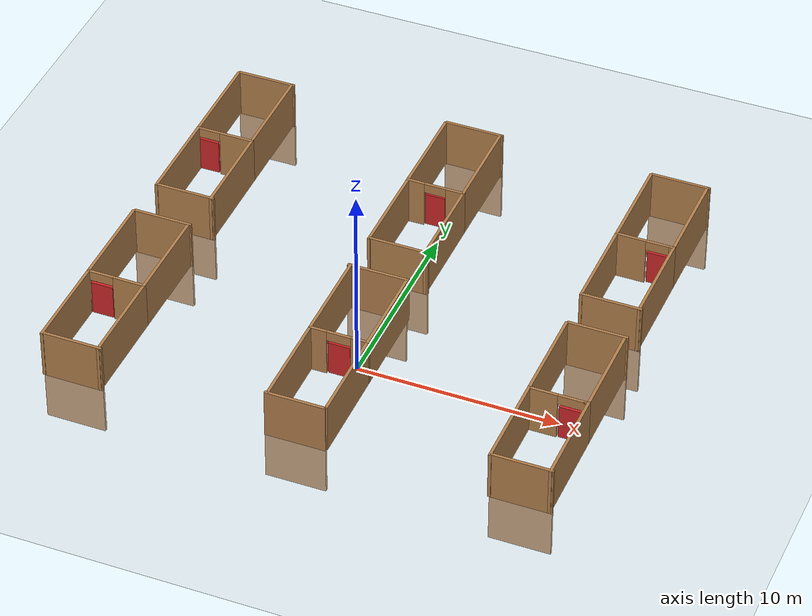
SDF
<sdf version="1.6">
 <world name="default">
  <model name="ground_plane">
   <static>1</static>
   <link name="link">
    <collision name="collision">
     <geometry><plane><normal>0 0 1</normal><size>100 100</size></plane></geometry>
     <surface><friction><ode><mu>100</mu><mu2>50</mu2></ode></friction></surface>
    </collision>
    <visual name="visual">
     <cast_shadows>0</cast_shadows>
     <geometry><plane><normal>0 0 1</normal><size>100 100</size></plane></geometry>
     <material>
      <script><uri>file://media/materials/scripts/gazebo.material</uri><name>Gazebo/Grey</name></script>
     </material>
    </visual>
   </link>
  </model>
  <model name="door_1">
   <link name="hinge">
    <inertial>
     <pose>-0.05 0 0 0 -0 0</pose>
     <mass>0.01</mass>
     <inertia><ixx>1</ixx><ixy>0</ixy><ixz>0</ixz><iyy>100</iyy><iyz>0</iyz><izz>1</izz></inertia>
    </inertial>
    <velocity_decay><linear>0</linear><angular>0</angular></velocity_decay>
   </link>
   <link name="door">
    <pose>0.1 -0.65 0.35 0 0 -1.57</pose>
    <inertial>
     <pose>0.1 -0.65 0.35 0 0 -1.57</pose>
     <mass>0.1</mass>
     <inertia><ixx>1</ixx><ixy>0</ixy><ixz>0</ixz><iyy>100</iyy><iyz>0</iyz><izz>1</izz></inertia>
    </inertial>
    <collision name="door_collision">
     <pose>0.1 -0.65 0.35 0 0 -1.57</pose>
     <geometry><box><size>1.1 0.15 1.8</size></box></geometry>
    </collision>
    <visual name="door_visual">
     <pose>0.1 -0.65 0.35 0 0 -1.57</pose>
     <geometry><box><size>1.1 0.15 1.8</size></box></geometry>
     <material><script><name>Gazebo/Red</name><uri>__default__</uri></script></material>
    </visual>
    <velocity_decay><linear>0</linear><angular>0</angular></velocity_decay>
   </link>
   <joint name="door_hinge" type="revolute">
    <child>door</child>
    <parent>hinge</parent>
    <pose>0.08 0 0 0 -0 0</pose>
    <axis>
     <xyz>0 0 1</xyz>
     <limit><lower>-1.57</lower><upper>1.57</upper><effort>0</effort><velocity>10</velocity></limit>
     <dynamics><spring_reference>0</spring_reference><spring_stiffness>0</spring_stiffness></dynamics>
     <use_parent_model_frame>0</use_parent_model_frame>
    </axis>
   </joint>
   <joint name="floor_link" type="revolute">
    <child>hinge</child>
    <parent>world</parent>
    <axis>
     <xyz>0 0 1</xyz>
     <limit><lower>0</lower><upper>0</upper><effort>0</effort><velocity>0</velocity></limit>
     <dynamics><spring_reference>0</spring_reference><spring_stiffness>0</spring_stiffness></dynamics>
     <use_parent_model_frame>0</use_parent_model_frame>
    </axis>
   </joint>
   <plugin name="door_plugin" filename="libdoor_plugin.so">
    <door_type>flip</door_type>
    <model_domain_space>door_</model_domain_space>
    <door_direction>clockwise</door_direction>
    <robotNamespace>/</robotNamespace>
   </plugin>
   <pose>-0 0 0.3 0 -0 0</pose>
  </model>
  <model name="door_2">
   <link name="hinge">
    <inertial>
     <pose>-0.05 0 0 0 -0 0</pose>
     <mass>0.01</mass>
     <inertia><ixx>1</ixx><ixy>0</ixy><ixz>0</ixz><iyy>100</iyy><iyz>0</iyz><izz>1</izz></inertia>
    </inertial>
    <velocity_decay><linear>0</linear><angular>0</angular></velocity_decay>
   </link>
   <link name="door">
    <pose>0.1 -0.6 0.35 0 0 -1.57</pose>
    <inertial>
     <pose>0.1 -0.6 0.35 0 0 -1.57</pose>
     <mass>0.1</mass>
     <inertia><ixx>1</ixx><ixy>0</ixy><ixz>0</ixz><iyy>100</iyy><iyz>0</iyz><izz>1</izz></inertia>
    </inertial>
    <collision name="door_collision">
     <pose>0.1 -0.6 0.35 0 0 -1.57</pose>
     <geometry><box><size>1 0.15 1.8</size></box></geometry>
    </collision>
    <visual name="door_visual">
     <pose>0.1 -0.6 0.35 0 0 -1.57</pose>
     <geometry><box><size>1 0.15 1.8</size></box></geometry>
     <material><script><name>Gazebo/Red</name><uri>__default__</uri></script></material>
    </visual>
    <velocity_decay><linear>0</linear><angular>0</angular></velocity_decay>
   </link>
   <joint name="door_hinge" type="revolute">
    <child>door</child>
    <parent>hinge</parent>
    <pose>0.08 0 0 0 -0 0</pose>
    <axis>
     <xyz>0 0 1</xyz>
     <limit><lower>-1.57</lower><upper>1.57</upper><effort>0</effort><velocity>10</velocity></limit>
     <dynamics><spring_reference>0</spring_reference><spring_stiffness>0</spring_stiffness></dynamics>
     <use_parent_model_frame>0</use_parent_model_frame>
    </axis>
   </joint>
   <joint name="floor_link" type="revolute">
    <child>hinge</child>
    <parent>world</parent>
    <axis>
     <xyz>0 0 1</xyz>
     <limit><lower>0</lower><upper>0</upper><effort>0</effort><velocity>0</velocity></limit>
     <dynamics><spring_reference>0</spring_reference><spring_stiffness>0</spring_stiffness></dynamics>
     <use_parent_model_frame>0</use_parent_model_frame>
    </axis>
   </joint>
   <plugin name="door_plugin" filename="libdoor_plugin.so">
    <door_type>flip</door_type>
    <model_domain_space>door_</model_domain_space>
    <door_direction>clockwise</door_direction>
    <robotNamespace>/</robotNamespace>
   </plugin>
   <pose>-0.060638 11.8346 0.3 0 -0 0</pose>
  </model>
  <model name="door_7">
   <link name="hinge">
    <inertial>
     <pose>-0.05 0 0 0 -0 0</pose>
     <mass>0.01</mass>
     <inertia><ixx>1</ixx><ixy>0</ixy><ixz>0</ixz><iyy>100</iyy><iyz>0</iyz><izz>1</izz></inertia>
    </inertial>
    <velocity_decay><linear>0</linear><angular>0</angular></velocity_decay>
   </link>
   <link name="door">
    <pose>0.1 -0.65 0.35 0 0 -1.57</pose>
    <inertial>
     <pose>0.1 -0.65 0.35 0 0 -1.57</pose>
     <mass>0.1</mass>
     <inertia><ixx>1</ixx><ixy>0</ixy><ixz>0</ixz><iyy>100</iyy><iyz>0</iyz><izz>1</izz></inertia>
    </inertial>
    <collision name="door_collision">
     <pose>0.1 -0.65 0.35 0 0 -1.57</pose>
     <geometry><box><size>1.1 0.15 1.8</size></box></geometry>
    </collision>
    <visual name="door_visual">
     <pose>0.1 -0.65 0.35 0 0 -1.57</pose>
     <geometry><box><size>1.1 0.15 1.8</size></box></geometry>
     <material><script><name>Gazebo/Red</name><uri>__default__</uri></script></material>
    </visual>
    <velocity_decay><linear>0</linear><angular>0</angular></velocity_decay>
   </link>
   <joint name="door_hinge" type="revolute">
    <child>door</child>
    <parent>hinge</parent>
    <pose>0.08 0 0 0 -0 0</pose>
    <axis>
     <xyz>0 0 1</xyz>
     <limit><lower>-1.57</lower><upper>1.57</upper><effort>0</effort><velocity>10</velocity></limit>
     <dynamics><spring_reference>0</spring_reference><spring_stiffness>0</spring_stiffness></dynamics>
     <use_parent_model_frame>0</use_parent_model_frame>
    </axis>
   </joint>
   <joint name="floor_link" type="revolute">
    <child>hinge</child>
    <parent>world</parent>
    <axis>
     <xyz>0 0 1</xyz>
     <limit><lower>0</lower><upper>0</upper><effort>0</effort><velocity>0</velocity></limit>
     <dynamics><spring_reference>0</spring_reference><spring_stiffness>0</spring_stiffness></dynamics>
     <use_parent_model_frame>0</use_parent_model_frame>
    </axis>
   </joint>
   <plugin name="door_plugin" filename="libdoor_plugin.so">
    <door_type>flip</door_type>
    <model_domain_space>door_</model_domain_space>
    <door_direction>clockwise</door_direction>
    <robotNamespace>/</robotNamespace>
   </plugin>
   <pose>11.3504 -0.115257 0.3 0 -0 0</pose>
  </model>
  <model name="door_10">
   <link name="hinge">
    <inertial>
     <pose>-0.05 0 0 0 -0 0</pose>
     <mass>0.01</mass>
     <inertia><ixx>1</ixx><ixy>0</ixy><ixz>0</ixz><iyy>100</iyy><iyz>0</iyz><izz>1</izz></inertia>
    </inertial>
    <velocity_decay><linear>0</linear><angular>0</angular></velocity_decay>
   </link>
   <link name="door">
    <pose>0.1 -0.6 0.35 0 0 -1.57</pose>
    <inertial>
     <pose>0.1 -0.6 0.35 0 0 -1.57</pose>
     <mass>0.1</mass>
     <inertia><ixx>1</ixx><ixy>0</ixy><ixz>0</ixz><iyy>100</iyy><iyz>0</iyz><izz>1</izz></inertia>
    </inertial>
    <collision name="door_collision">
     <pose>0.1 -0.6 0.35 0 0 -1.57</pose>
     <geometry><box><size>1 0.15 1.8</size></box></geometry>
    </collision>
    <visual name="door_visual">
     <pose>0.1 -0.6 0.35 0 0 -1.57</pose>
     <geometry><box><size>1 0.15 1.8</size></box></geometry>
     <material><script><name>Gazebo/Red</name><uri>__default__</uri></script></material>
    </visual>
    <velocity_decay><linear>0</linear><angular>0</angular></velocity_decay>
   </link>
   <joint name="door_hinge" type="revolute">
    <child>door</child>
    <parent>hinge</parent>
    <pose>0.08 0 0 0 -0 0</pose>
    <axis>
     <xyz>0 0 1</xyz>
     <limit><lower>-1.57</lower><upper>1.57</upper><effort>0</effort><velocity>10</velocity></limit>
     <dynamics><spring_reference>0</spring_reference><spring_stiffness>0</spring_stiffness></dynamics>
     <use_parent_model_frame>0</use_parent_model_frame>
    </axis>
   </joint>
   <joint name="floor_link" type="revolute">
    <child>hinge</child>
    <parent>world</parent>
    <axis>
     <xyz>0 0 1</xyz>
     <limit><lower>0</lower><upper>0</upper><effort>0</effort><velocity>0</velocity></limit>
     <dynamics><spring_reference>0</spring_reference><spring_stiffness>0</spring_stiffness></dynamics>
     <use_parent_model_frame>0</use_parent_model_frame>
    </axis>
   </joint>
   <plugin name="door_plugin" filename="libdoor_plugin.so">
    <door_type>flip</door_type>
    <model_domain_space>door_</model_domain_space>
    <door_direction>clockwise</door_direction>
    <robotNamespace>/</robotNamespace>
   </plugin>
   <pose>11.2661 11.7432 0.3 0 -0 0</pose>
  </model>
  <model name="door_15">
   <link name="hinge">
    <inertial>
     <pose>-0.05 0 0 0 -0 0</pose>
     <mass>0.01</mass>
     <inertia><ixx>1</ixx><ixy>0</ixy><ixz>0</ixz><iyy>100</iyy><iyz>0</iyz><izz>1</izz></inertia>
    </inertial>
    <velocity_decay><linear>0</linear><angular>0</angular></velocity_decay>
   </link>
   <link name="door">
    <pose>0.1 -0.65 0.35 0 0 -1.57</pose>
    <inertial>
     <pose>0.1 -0.65 0.35 0 0 -1.57</pose>
     <mass>0.1</mass>
     <inertia><ixx>1</ixx><ixy>0</ixy><ixz>0</ixz><iyy>100</iyy><iyz>0</iyz><izz>1</izz></inertia>
    </inertial>
    <collision name="door_collision">
     <pose>0.1 -0.65 0.35 0 0 -1.57</pose>
     <geometry><box><size>1.1 0.15 1.8</size></box></geometry>
    </collision>
    <visual name="door_visual">
     <pose>0.1 -0.65 0.35 0 0 -1.57</pose>
     <geometry><box><size>1.1 0.15 1.8</size></box></geometry>
     <material><script><name>Gazebo/Red</name><uri>__default__</uri></script></material>
    </visual>
    <velocity_decay><linear>0</linear><angular>0</angular></velocity_decay>
   </link>
   <joint name="door_hinge" type="revolute">
    <child>door</child>
    <parent>hinge</parent>
    <pose>0.08 0 0 0 -0 0</pose>
    <axis>
     <xyz>0 0 1</xyz>
     <limit><lower>-1.57</lower><upper>1.57</upper><effort>0</effort><velocity>10</velocity></limit>
     <dynamics><spring_reference>0</spring_reference><spring_stiffness>0</spring_stiffness></dynamics>
     <use_parent_model_frame>0</use_parent_model_frame>
    </axis>
   </joint>
   <joint name="floor_link" type="revolute">
    <child>hinge</child>
    <parent>world</parent>
    <axis>
     <xyz>0 0 1</xyz>
     <limit><lower>0</lower><upper>0</upper><effort>0</effort><velocity>0</velocity></limit>
     <dynamics><spring_reference>0</spring_reference><spring_stiffness>0</spring_stiffness></dynamics>
     <use_parent_model_frame>0</use_parent_model_frame>
    </axis>
   </joint>
   <plugin name="door_plugin" filename="libdoor_plugin.so">
    <door_type>flip</door_type>
    <model_domain_space>door_</model_domain_space>
    <door_direction>clockwise</door_direction>
    <robotNamespace>/</robotNamespace>
   </plugin>
   <pose>-11.9366 -0.249454 0.3 0 -0 0</pose>
  </model>
  <model name="door_16">
   <link name="hinge">
    <inertial>
     <pose>-0.05 0 0 0 -0 0</pose>
     <mass>0.01</mass>
     <inertia><ixx>1</ixx><ixy>0</ixy><ixz>0</ixz><iyy>100</iyy><iyz>0</iyz><izz>1</izz></inertia>
    </inertial>
    <velocity_decay><linear>0</linear><angular>0</angular></velocity_decay>
   </link>
   <link name="door">
    <pose>0.1 -0.6 0.35 0 0 -1.57</pose>
    <inertial>
     <pose>0.1 -0.6 0.35 0 0 -1.57</pose>
     <mass>0.1</mass>
     <inertia><ixx>1</ixx><ixy>0</ixy><ixz>0</ixz><iyy>100</iyy><iyz>0</iyz><izz>1</izz></inertia>
    </inertial>
    <collision name="door_collision">
     <pose>0.1 -0.6 0.35 0 0 -1.57</pose>
     <geometry><box><size>1 0.15 1.8</size></box></geometry>
    </collision>
    <visual name="door_visual">
     <pose>0.1 -0.6 0.35 0 0 -1.57</pose>
     <geometry><box><size>1 0.15 1.8</size></box></geometry>
     <material><script><name>Gazebo/Red</name><uri>__default__</uri></script></material>
    </visual>
    <velocity_decay><linear>0</linear><angular>0</angular></velocity_decay>
   </link>
   <joint name="door_hinge" type="revolute">
    <child>door</child>
    <parent>hinge</parent>
    <pose>0.08 0 0 0 -0 0</pose>
    <axis>
     <xyz>0 0 1</xyz>
     <limit><lower>-1.57</lower><upper>1.57</upper><effort>0</effort><velocity>10</velocity></limit>
     <dynamics><spring_reference>0</spring_reference><spring_stiffness>0</spring_stiffness></dynamics>
     <use_parent_model_frame>0</use_parent_model_frame>
    </axis>
   </joint>
   <joint name="floor_link" type="revolute">
    <child>hinge</child>
    <parent>world</parent>
    <axis>
     <xyz>0 0 1</xyz>
     <limit><lower>0</lower><upper>0</upper><effort>0</effort><velocity>0</velocity></limit>
     <dynamics><spring_reference>0</spring_reference><spring_stiffness>0</spring_stiffness></dynamics>
     <use_parent_model_frame>0</use_parent_model_frame>
    </axis>
   </joint>
   <plugin name="door_plugin" filename="libdoor_plugin.so">
    <door_type>flip</door_type>
    <model_domain_space>door_</model_domain_space>
    <door_direction>clockwise</door_direction>
    <robotNamespace>/</robotNamespace>
   </plugin>
   <pose>-11.9227 11.67 0.3 0 -0 0</pose>
  </model>
  <model name="middle120">
   <pose>-0.190338 -0.731903 0 0 0 -1.56681</pose>
   <link name="Wall_11">
    <collision name="Wall_11_Collision">
     <geometry><box><size>5 0.15 2.5</size></box></geometry>
     <pose>0 0 1.25 0 -0 0</pose>
    </collision>
    <visual name="Wall_11_Visual">
     <pose>0 0 1.25 0 -0 0</pose>
     <geometry><box><size>5 0.15 2.5</size></box></geometry>
     <material>
      <script><uri>file://media/materials/scripts/gazebo.material</uri><name>Gazebo/Wood</name></script>
      <ambient>1 1 1 1</ambient>
     </material>
     <meta><layer>0</layer></meta>
    </visual>
    <pose>-2.425 -1.83058 0 0 -0 3.14159</pose>
   </link>
   <link name="Wall_5">
    <collision name="Wall_5_Collision">
     <geometry><box><size>5 0.15 2.5</size></box></geometry>
     <pose>0 0 1.25 0 -0 0</pose>
    </collision>
    <visual name="Wall_5_Visual">
     <pose>0 0 1.25 0 -0 0</pose>
     <geometry><box><size>5 0.15 2.5</size></box></geometry>
     <material>
      <script><uri>file://media/materials/scripts/gazebo.material</uri><name>Gazebo/Wood</name></script>
      <ambient>1 1 1 1</ambient>
     </material>
     <meta><layer>0</layer></meta>
    </visual>
    <pose>-2.425 1.01942 0 0 -0 0</pose>
   </link>
   <link name="Wall_6">
    <pose>0 -0.405576 0 0 -0 -1.5708</pose>
    <visual name="Wall_6_Visual_0">
     <pose>-1.0525 0 1.25 0 -0 0</pose>
     <geometry><box><size>0.895 0.15 2.5</size></box></geometry>
     <material>
      <script><uri>file://media/materials/scripts/gazebo.material</uri><name>Gazebo/Wood</name></script>
      <ambient>1 1 1 1</ambient>
     </material>
     <meta><layer>0</layer></meta>
    </visual>
    <collision name="Wall_6_Collision_0">
     <geometry><box><size>0.895 0.15 2.5</size></box></geometry>
     <pose>-1.0525 0 1.25 0 -0 0</pose>
    </collision>
    <visual name="Wall_6_Visual_1">
     <pose>1.0475 0 1.25 0 -0 0</pose>
     <geometry><box><size>0.905 0.15 2.5</size></box></geometry>
     <material>
      <script><uri>file://media/materials/scripts/gazebo.material</uri><name>Gazebo/Wood</name></script>
      <ambient>1 1 1 1</ambient>
     </material>
     <meta><layer>0</layer></meta>
    </visual>
    <collision name="Wall_6_Collision_1">
     <geometry><box><size>0.905 0.15 2.5</size></box></geometry>
     <pose>1.0475 0 1.25 0 -0 0</pose>
    </collision>
    <visual name="Wall_6_Visual_2">
     <pose>-0.005 0 2.25 0 -0 0</pose>
     <geometry><box><size>1.2 0.15 0.5</size></box></geometry>
     <material>
      <script><uri>file://media/materials/scripts/gazebo.material</uri><name>Gazebo/Wood</name></script>
      <ambient>1 1 1 1</ambient>
     </material>
     <meta><layer>0</layer></meta>
    </visual>
    <collision name="Wall_6_Collision_2">
     <geometry><box><size>1.2 0.15 0.5</size></box></geometry>
     <pose>-0.005 0 2.25 0 -0 0</pose>
    </collision>
   </link>
   <link name="Wall_7">
    <collision name="Wall_7_Collision">
     <geometry><box><size>5 0.15 2.5</size></box></geometry>
     <pose>0 0 1.25 0 -0 0</pose>
    </collision>
    <visual name="Wall_7_Visual">
     <pose>0 0 1.25 0 -0 0</pose>
     <geometry><box><size>5 0.15 2.5</size></box></geometry>
     <material>
      <script><uri>file://media/materials/scripts/gazebo.material</uri><name>Gazebo/Wood</name></script>
      <ambient>1 1 1 1</ambient>
     </material>
     <meta><layer>0</layer></meta>
    </visual>
    <pose>2.425 -1.83058 0 0 -0 0</pose>
   </link>
   <link name="Wall_9">
    <collision name="Wall_9_Collision">
     <geometry><box><size>5 0.15 2.5</size></box></geometry>
     <pose>0 0 1.25 0 -0 0</pose>
    </collision>
    <visual name="Wall_9_Visual">
     <pose>0 0 1.25 0 -0 0</pose>
     <geometry><box><size>5 0.15 2.5</size></box></geometry>
     <material>
      <script><uri>file://media/materials/scripts/gazebo.material</uri><name>Gazebo/Wood</name></script>
      <ambient>1 1 1 1</ambient>
     </material>
     <meta><layer>0</layer></meta>
    </visual>
    <pose>2.425 1.01942 0 0 -0 0</pose>
   </link>
   <link name="Wall_10">
    <collision name="Wall_10_Collision">
     <geometry><box><size>0.15 3 5</size></box></geometry>
     <pose>-7.25 -1.5 0 0 -0 0</pose>
    </collision>
    <visual name="Wall_10_Visual">
     <pose>-7.25 -1.5 0 0 -0 0</pose>
     <geometry><box><size>0.15 3 5</size></box></geometry>
     <material>
      <script><uri>file://media/materials/scripts/gazebo.material</uri><name>Gazebo/Wood</name></script>
      <ambient>1 1 1 1</ambient>
     </material>
     <meta><layer>0</layer></meta>
    </visual>
    <pose>2.425 1.01942 0 0 -0 0</pose>
   </link>
   <link name="Wall_12">
    <collision name="Wall_12_Collision">
     <geometry><box><size>0.15 3 5</size></box></geometry>
     <pose>2.5 -1.5 0 0 -0 0</pose>
    </collision>
    <visual name="Wall_12_Visual">
     <pose>2.5 -1.5 0 0 -0 0</pose>
     <geometry><box><size>0.15 3 5</size></box></geometry>
     <material>
      <script><uri>file://media/materials/scripts/gazebo.material</uri><name>Gazebo/Wood</name></script>
      <ambient>1 1 1 1</ambient>
     </material>
     <meta><layer>0</layer></meta>
    </visual>
    <pose>2.425 1.01942 0 0 -0 0</pose>
   </link>
   <static>1</static>
  </model>
  <model name="right090_1">
   <pose>9.77242 -0.821295 0 0 -0 1.57237</pose>
   <link name="Wall_11">
    <collision name="Wall_11_Collision">
     <geometry><box><size>5 0.15 2.5</size></box></geometry>
     <pose>0 0 1.25 0 -0 0</pose>
    </collision>
    <visual name="Wall_11_Visual">
     <pose>0 0 1.25 0 -0 0</pose>
     <geometry><box><size>5 0.15 2.5</size></box></geometry>
     <material>
      <script><uri>file://media/materials/scripts/gazebo.material</uri><name>Gazebo/Wood</name></script>
      <ambient>1 1 1 1</ambient>
     </material>
     <meta><layer>0</layer></meta>
    </visual>
    <pose>-2.425 -1.83058 0 0 -0 3.14159</pose>
   </link>
   <link name="Wall_5">
    <collision name="Wall_5_Collision">
     <geometry><box><size>5 0.15 2.5</size></box></geometry>
     <pose>0 0 1.25 0 -0 0</pose>
    </collision>
    <visual name="Wall_5_Visual">
     <pose>0 0 1.25 0 -0 0</pose>
     <geometry><box><size>5 0.15 2.5</size></box></geometry>
     <material>
      <script><uri>file://media/materials/scripts/gazebo.material</uri><name>Gazebo/Wood</name></script>
      <ambient>1 1 1 1</ambient>
     </material>
     <meta><layer>0</layer></meta>
    </visual>
    <pose>-2.425 1.01942 0 0 -0 0</pose>
   </link>
   <link name="Wall_6">
    <pose>0 -0.405576 0 0 -0 -1.5708</pose>
    <visual name="Wall_6_Visual_0">
     <pose>-0.7025 0 1.25 0 -0 0</pose>
     <geometry><box><size>1.355 0.15 2.5</size></box></geometry>
     <material>
      <script><uri>file://media/materials/scripts/gazebo.material</uri><name>Gazebo/Wood</name></script>
      <ambient>1 1 1 1</ambient>
     </material>
     <meta><layer>0</layer></meta>
    </visual>
    <collision name="Wall_6_Collision_0">
     <geometry><box><size>1.355 0.15 2.5</size></box></geometry>
     <pose>-0.7025 0 1.25 0 -0 0</pose>
    </collision>
    <visual name="Wall_6_Visual_1">
     <pose>1.2975 0 1.25 0 -0 0</pose>
     <geometry><box><size>0.195 0.15 2.5</size></box></geometry>
     <material>
      <script><uri>file://media/materials/scripts/gazebo.material</uri><name>Gazebo/Wood</name></script>
      <ambient>1 1 1 1</ambient>
     </material>
     <meta><layer>0</layer></meta>
    </visual>
    <collision name="Wall_6_Collision_1">
     <geometry><box><size>0.195 0.15 2.5</size></box></geometry>
     <pose>1.2975 0 1.25 0 -0 0</pose>
    </collision>
    <visual name="Wall_6_Visual_2">
     <pose>0.705 0 2.25 0 -0 0</pose>
     <geometry><box><size>1.5 0.15 0.5</size></box></geometry>
     <material>
      <script><uri>file://media/materials/scripts/gazebo.material</uri><name>Gazebo/Wood</name></script>
      <ambient>1 1 1 1</ambient>
     </material>
     <meta><layer>0</layer></meta>
    </visual>
    <collision name="Wall_6_Collision_2">
     <geometry><box><size>1.5 0.15 0.5</size></box></geometry>
     <pose>0.705 0 2.25 0 -0 0</pose>
    </collision>
   </link>
   <link name="Wall_7">
    <collision name="Wall_7_Collision">
     <geometry><box><size>5 0.15 2.5</size></box></geometry>
     <pose>0 0 1.25 0 -0 0</pose>
    </collision>
    <visual name="Wall_7_Visual">
     <pose>0 0 1.25 0 -0 0</pose>
     <geometry><box><size>5 0.15 2.5</size></box></geometry>
     <material>
      <script><uri>file://media/materials/scripts/gazebo.material</uri><name>Gazebo/Wood</name></script>
      <ambient>1 1 1 1</ambient>
     </material>
     <meta><layer>0</layer></meta>
    </visual>
    <pose>2.425 -1.83058 0 0 -0 0</pose>
   </link>
   <link name="Wall_9">
    <collision name="Wall_9_Collision">
     <geometry><box><size>5 0.15 2.5</size></box></geometry>
     <pose>0 0 1.25 0 -0 0</pose>
    </collision>
    <visual name="Wall_9_Visual">
     <pose>0 0 1.25 0 -0 0</pose>
     <geometry><box><size>5 0.15 2.5</size></box></geometry>
     <material>
      <script><uri>file://media/materials/scripts/gazebo.material</uri><name>Gazebo/Wood</name></script>
      <ambient>1 1 1 1</ambient>
     </material>
     <meta><layer>0</layer></meta>
    </visual>
    <pose>2.425 1.01942 0 0 -0 0</pose>
   </link>
   <link name="Wall_10">
    <collision name="Wall_10_Collision">
     <geometry><box><size>0.15 3 5</size></box></geometry>
     <pose>-7.25 -1.5 0 0 -0 0</pose>
    </collision>
    <visual name="Wall_10_Visual">
     <pose>-7.25 -1.5 0 0 -0 0</pose>
     <geometry><box><size>0.15 3 5</size></box></geometry>
     <material>
      <script><uri>file://media/materials/scripts/gazebo.material</uri><name>Gazebo/Wood</name></script>
      <ambient>1 1 1 1</ambient>
     </material>
     <meta><layer>0</layer></meta>
    </visual>
    <pose>2.425 1.01942 0 0 -0 0</pose>
   </link>
   <link name="Wall_12">
    <collision name="Wall_12_Collision">
     <geometry><box><size>0.15 3 5</size></box></geometry>
     <pose>2.5 -1.5 0 0 -0 0</pose>
    </collision>
    <visual name="Wall_12_Visual">
     <pose>2.5 -1.5 0 0 -0 0</pose>
     <geometry><box><size>0.15 3 5</size></box></geometry>
     <material>
      <script><uri>file://media/materials/scripts/gazebo.material</uri><name>Gazebo/Wood</name></script>
      <ambient>1 1 1 1</ambient>
     </material>
     <meta><layer>0</layer></meta>
    </visual>
    <pose>2.425 1.01942 0 0 -0 0</pose>
   </link>
   <static>1</static>
  </model>
  <model name="left120">
   <pose>-12.1762 -0.956185 0 0 -0 1.56736</pose>
   <link name="Wall_11">
    <collision name="Wall_11_Collision">
     <geometry><box><size>5 0.15 2.5</size></box></geometry>
     <pose>0 0 1.25 0 -0 0</pose>
    </collision>
    <visual name="Wall_11_Visual">
     <pose>0 0 1.25 0 -0 0</pose>
     <geometry><box><size>5 0.15 2.5</size></box></geometry>
     <material>
      <script><uri>file://media/materials/scripts/gazebo.material</uri><name>Gazebo/Wood</name></script>
      <ambient>1 1 1 1</ambient>
     </material>
     <meta><layer>0</layer></meta>
    </visual>
    <pose>-2.425 -1.83058 0 0 -0 3.14159</pose>
   </link>
   <link name="Wall_5">
    <collision name="Wall_5_Collision">
     <geometry><box><size>5 0.15 2.5</size></box></geometry>
     <pose>0 0 1.25 0 -0 0</pose>
    </collision>
    <visual name="Wall_5_Visual">
     <pose>0 0 1.25 0 -0 0</pose>
     <geometry><box><size>5 0.15 2.5</size></box></geometry>
     <material>
      <script><uri>file://media/materials/scripts/gazebo.material</uri><name>Gazebo/Wood</name></script>
      <ambient>1 1 1 1</ambient>
     </material>
     <meta><layer>0</layer></meta>
    </visual>
    <pose>-2.425 1.01942 0 0 -0 0</pose>
   </link>
   <link name="Wall_6">
    <pose>0 -0.405576 0 0 -0 -1.5708</pose>
    <visual name="Wall_6_Visual_0">
     <pose>-1.4275 0 1.25 0 -0 0</pose>
     <geometry><box><size>0.145 0.15 2.5</size></box></geometry>
     <material>
      <script><uri>file://media/materials/scripts/gazebo.material</uri><name>Gazebo/Wood</name></script>
      <ambient>1 1 1 1</ambient>
     </material>
     <meta><layer>0</layer></meta>
    </visual>
    <collision name="Wall_6_Collision_0">
     <geometry><box><size>0.145 0.15 2.5</size></box></geometry>
     <pose>-1.4275 0 1.25 0 -0 0</pose>
    </collision>
    <visual name="Wall_6_Visual_1">
     <pose>0.6725 0 1.25 0 -0 0</pose>
     <geometry><box><size>1.655 0.15 2.5</size></box></geometry>
     <material>
      <script><uri>file://media/materials/scripts/gazebo.material</uri><name>Gazebo/Wood</name></script>
      <ambient>1 1 1 1</ambient>
     </material>
     <meta><layer>0</layer></meta>
    </visual>
    <collision name="Wall_6_Collision_1">
     <geometry><box><size>1.655 0.15 2.5</size></box></geometry>
     <pose>0.6725 0 1.25 0 -0 0</pose>
    </collision>
    <visual name="Wall_6_Visual_2">
     <pose>-0.755 0 2.25 0 -0 0</pose>
     <geometry><box><size>1.2 0.15 0.5</size></box></geometry>
     <material>
      <script><uri>file://media/materials/scripts/gazebo.material</uri><name>Gazebo/Wood</name></script>
      <ambient>1 1 1 1</ambient>
     </material>
     <meta><layer>0</layer></meta>
    </visual>
    <collision name="Wall_6_Collision_2">
     <geometry><box><size>1.2 0.15 0.5</size></box></geometry>
     <pose>-0.755 0 2.25 0 -0 0</pose>
    </collision>
   </link>
   <link name="Wall_7">
    <collision name="Wall_7_Collision">
     <geometry><box><size>5 0.15 2.5</size></box></geometry>
     <pose>0 0 1.25 0 -0 0</pose>
    </collision>
    <visual name="Wall_7_Visual">
     <pose>0 0 1.25 0 -0 0</pose>
     <geometry><box><size>5 0.15 2.5</size></box></geometry>
     <material>
      <script><uri>file://media/materials/scripts/gazebo.material</uri><name>Gazebo/Wood</name></script>
      <ambient>1 1 1 1</ambient>
     </material>
     <meta><layer>0</layer></meta>
    </visual>
    <pose>2.425 -1.83058 0 0 -0 0</pose>
   </link>
   <link name="Wall_9">
    <collision name="Wall_9_Collision">
     <geometry><box><size>5 0.15 2.5</size></box></geometry>
     <pose>0 0 1.25 0 -0 0</pose>
    </collision>
    <visual name="Wall_9_Visual">
     <pose>0 0 1.25 0 -0 0</pose>
     <geometry><box><size>5 0.15 2.5</size></box></geometry>
     <material>
      <script><uri>file://media/materials/scripts/gazebo.material</uri><name>Gazebo/Wood</name></script>
      <ambient>1 1 1 1</ambient>
     </material>
     <meta><layer>0</layer></meta>
    </visual>
    <pose>2.425 1.01942 0 0 -0 0</pose>
   </link>
   <link name="Wall_10">
    <collision name="Wall_10_Collision">
     <geometry><box><size>0.15 3 5</size></box></geometry>
     <pose>-7.25 -1.5 0 0 -0 0</pose>
    </collision>
    <visual name="Wall_10_Visual">
     <pose>-7.25 -1.5 0 0 -0 0</pose>
     <geometry><box><size>0.15 3 5</size></box></geometry>
     <material>
      <script><uri>file://media/materials/scripts/gazebo.material</uri><name>Gazebo/Wood</name></script>
      <ambient>1 1 1 1</ambient>
     </material>
     <meta><layer>0</layer></meta>
    </visual>
    <pose>2.425 1.01942 0 0 -0 0</pose>
   </link>
   <link name="Wall_12">
    <collision name="Wall_12_Collision">
     <geometry><box><size>0.15 3 5</size></box></geometry>
     <pose>2.5 -1.5 0 0 -0 0</pose>
    </collision>
    <visual name="Wall_12_Visual">
     <pose>2.5 -1.5 0 0 -0 0</pose>
     <geometry><box><size>0.15 3 5</size></box></geometry>
     <material>
      <script><uri>file://media/materials/scripts/gazebo.material</uri><name>Gazebo/Wood</name></script>
      <ambient>1 1 1 1</ambient>
     </material>
     <meta><layer>0</layer></meta>
    </visual>
    <pose>2.425 1.01942 0 0 -0 0</pose>
   </link>
   <static>1</static>
  </model>
  <model name="middle110">
   <pose>-0.983388 11.1271 0 0 -0 1.57038</pose>
   <link name="Wall_11">
    <collision name="Wall_11_Collision">
     <geometry><box><size>5 0.15 2.5</size></box></geometry>
     <pose>0 0 1.25 0 -0 0</pose>
    </collision>
    <visual name="Wall_11_Visual">
     <pose>0 0 1.25 0 -0 0</pose>
     <geometry><box><size>5 0.15 2.5</size></box></geometry>
     <material>
      <script><uri>file://media/materials/scripts/gazebo.material</uri><name>Gazebo/Wood</name></script>
      <ambient>1 1 1 1</ambient>
     </material>
     <meta><layer>0</layer></meta>
    </visual>
    <pose>-2.425 -1.83058 0 0 -0 3.14159</pose>
   </link>
   <link name="Wall_5">
    <collision name="Wall_5_Collision">
     <geometry><box><size>5 0.15 2.5</size></box></geometry>
     <pose>0 0 1.25 0 -0 0</pose>
    </collision>
    <visual name="Wall_5_Visual">
     <pose>0 0 1.25 0 -0 0</pose>
     <geometry><box><size>5 0.15 2.5</size></box></geometry>
     <material>
      <script><uri>file://media/materials/scripts/gazebo.material</uri><name>Gazebo/Wood</name></script>
      <ambient>1 1 1 1</ambient>
     </material>
     <meta><layer>0</layer></meta>
    </visual>
    <pose>-2.425 1.01942 0 0 -0 0</pose>
   </link>
   <link name="Wall_6">
    <pose>0 -0.405576 0 0 -0 -1.5708</pose>
    <visual name="Wall_6_Visual_0">
     <pose>-1.0275 0 1.25 0 -0 0</pose>
     <geometry><box><size>0.945 0.15 2.5</size></box></geometry>
     <material>
      <script><uri>file://media/materials/scripts/gazebo.material</uri><name>Gazebo/Wood</name></script>
      <ambient>1 1 1 1</ambient>
     </material>
     <meta><layer>0</layer></meta>
    </visual>
    <collision name="Wall_6_Collision_0">
     <geometry><box><size>0.945 0.15 2.5</size></box></geometry>
     <pose>-1.0275 0 1.25 0 -0 0</pose>
    </collision>
    <visual name="Wall_6_Visual_1">
     <pose>1.0225 0 1.25 0 -0 0</pose>
     <geometry><box><size>0.955 0.15 2.5</size></box></geometry>
     <material>
      <script><uri>file://media/materials/scripts/gazebo.material</uri><name>Gazebo/Wood</name></script>
      <ambient>1 1 1 1</ambient>
     </material>
     <meta><layer>0</layer></meta>
    </visual>
    <collision name="Wall_6_Collision_1">
     <geometry><box><size>0.955 0.15 2.5</size></box></geometry>
     <pose>1.0225 0 1.25 0 -0 0</pose>
    </collision>
    <visual name="Wall_6_Visual_2">
     <pose>-0.005 0 2.25 0 -0 0</pose>
     <geometry><box><size>1.1 0.15 0.5</size></box></geometry>
     <material>
      <script><uri>file://media/materials/scripts/gazebo.material</uri><name>Gazebo/Wood</name></script>
      <ambient>1 1 1 1</ambient>
     </material>
     <meta><layer>0</layer></meta>
    </visual>
    <collision name="Wall_6_Collision_2">
     <geometry><box><size>1.1 0.15 0.5</size></box></geometry>
     <pose>-0.005 0 2.25 0 -0 0</pose>
    </collision>
   </link>
   <link name="Wall_7">
    <collision name="Wall_7_Collision">
     <geometry><box><size>5 0.15 2.5</size></box></geometry>
     <pose>0 0 1.25 0 -0 0</pose>
    </collision>
    <visual name="Wall_7_Visual">
     <pose>0 0 1.25 0 -0 0</pose>
     <geometry><box><size>5 0.15 2.5</size></box></geometry>
     <material>
      <script><uri>file://media/materials/scripts/gazebo.material</uri><name>Gazebo/Wood</name></script>
      <ambient>1 1 1 1</ambient>
     </material>
     <meta><layer>0</layer></meta>
    </visual>
    <pose>2.425 -1.83058 0 0 -0 0</pose>
   </link>
   <link name="Wall_9">
    <collision name="Wall_9_Collision">
     <geometry><box><size>5 0.15 2.5</size></box></geometry>
     <pose>0 0 1.25 0 -0 0</pose>
    </collision>
    <visual name="Wall_9_Visual">
     <pose>0 0 1.25 0 -0 0</pose>
     <geometry><box><size>5 0.15 2.5</size></box></geometry>
     <material>
      <script><uri>file://media/materials/scripts/gazebo.material</uri><name>Gazebo/Wood</name></script>
      <ambient>1 1 1 1</ambient>
     </material>
     <meta><layer>0</layer></meta>
    </visual>
    <pose>2.425 1.01942 0 0 -0 0</pose>
   </link>
   <link name="Wall_10">
    <collision name="Wall_10_Collision">
     <geometry><box><size>0.15 3 5</size></box></geometry>
     <pose>-7.25 -1.5 0 0 -0 0</pose>
    </collision>
    <visual name="Wall_10_Visual">
     <pose>-7.25 -1.5 0 0 -0 0</pose>
     <geometry><box><size>0.15 3 5</size></box></geometry>
     <material>
      <script><uri>file://media/materials/scripts/gazebo.material</uri><name>Gazebo/Wood</name></script>
      <ambient>1 1 1 1</ambient>
     </material>
     <meta><layer>0</layer></meta>
    </visual>
    <pose>2.425 1.01942 0 0 -0 0</pose>
   </link>
   <link name="Wall_12">
    <collision name="Wall_12_Collision">
     <geometry><box><size>0.15 3 5</size></box></geometry>
     <pose>2.5 -1.5 0 0 -0 0</pose>
    </collision>
    <visual name="Wall_12_Visual">
     <pose>2.5 -1.5 0 0 -0 0</pose>
     <geometry><box><size>0.15 3 5</size></box></geometry>
     <material>
      <script><uri>file://media/materials/scripts/gazebo.material</uri><name>Gazebo/Wood</name></script>
      <ambient>1 1 1 1</ambient>
     </material>
     <meta><layer>0</layer></meta>
    </visual>
    <pose>2.425 1.01942 0 0 -0 0</pose>
   </link>
   <static>1</static>
  </model>
  <model name="right090_2">
   <pose>9.69191 11.0641 0 0 -0 1.56994</pose>
   <link name="Wall_11">
    <collision name="Wall_11_Collision">
     <geometry><box><size>5 0.15 2.5</size></box></geometry>
     <pose>0 0 1.25 0 -0 0</pose>
    </collision>
    <visual name="Wall_11_Visual">
     <pose>0 0 1.25 0 -0 0</pose>
     <geometry><box><size>5 0.15 2.5</size></box></geometry>
     <material>
      <script><uri>file://media/materials/scripts/gazebo.material</uri><name>Gazebo/Wood</name></script>
      <ambient>1 1 1 1</ambient>
     </material>
     <meta><layer>0</layer></meta>
    </visual>
    <pose>-2.425 -1.83058 0 0 -0 3.14159</pose>
   </link>
   <link name="Wall_5">
    <collision name="Wall_5_Collision">
     <geometry><box><size>5 0.15 2.5</size></box></geometry>
     <pose>0 0 1.25 0 -0 0</pose>
    </collision>
    <visual name="Wall_5_Visual">
     <pose>0 0 1.25 0 -0 0</pose>
     <geometry><box><size>5 0.15 2.5</size></box></geometry>
     <material>
      <script><uri>file://media/materials/scripts/gazebo.material</uri><name>Gazebo/Wood</name></script>
      <ambient>1 1 1 1</ambient>
     </material>
     <meta><layer>0</layer></meta>
    </visual>
    <pose>-2.425 1.01942 0 0 -0 0</pose>
   </link>
   <link name="Wall_6">
    <pose>0 -0.405576 0 0 -0 -1.5708</pose>
    <visual name="Wall_6_Visual_0">
     <pose>-0.6525 0 1.25 0 -0 0</pose>
     <geometry><box><size>1.455 0.15 2.5</size></box></geometry>
     <material>
      <script><uri>file://media/materials/scripts/gazebo.material</uri><name>Gazebo/Wood</name></script>
      <ambient>1 1 1 1</ambient>
     </material>
     <meta><layer>0</layer></meta>
    </visual>
    <collision name="Wall_6_Collision_0">
     <geometry><box><size>1.455 0.15 2.5</size></box></geometry>
     <pose>-0.6525 0 1.25 0 -0 0</pose>
    </collision>
    <visual name="Wall_6_Visual_1">
     <pose>1.2975 0 1.25 0 -0 0</pose>
     <geometry><box><size>0.195 0.15 2.5</size></box></geometry>
     <material>
      <script><uri>file://media/materials/scripts/gazebo.material</uri><name>Gazebo/Wood</name></script>
      <ambient>1 1 1 1</ambient>
     </material>
     <meta><layer>0</layer></meta>
    </visual>
    <collision name="Wall_6_Collision_1">
     <geometry><box><size>0.195 0.15 2.5</size></box></geometry>
     <pose>1.2975 0 1.25 0 -0 0</pose>
    </collision>
    <visual name="Wall_6_Visual_2">
     <pose>0.705 0 2.25 0 -0 0</pose>
     <geometry><box><size>1.3 0.15 0.5</size></box></geometry>
     <material>
      <script><uri>file://media/materials/scripts/gazebo.material</uri><name>Gazebo/Wood</name></script>
      <ambient>1 1 1 1</ambient>
     </material>
     <meta><layer>0</layer></meta>
    </visual>
    <collision name="Wall_6_Collision_2">
     <geometry><box><size>1.3 0.15 0.5</size></box></geometry>
     <pose>0.705 0 2.25 0 -0 0</pose>
    </collision>
   </link>
   <link name="Wall_7">
    <collision name="Wall_7_Collision">
     <geometry><box><size>5 0.15 2.5</size></box></geometry>
     <pose>0 0 1.25 0 -0 0</pose>
    </collision>
    <visual name="Wall_7_Visual">
     <pose>0 0 1.25 0 -0 0</pose>
     <geometry><box><size>5 0.15 2.5</size></box></geometry>
     <material>
      <script><uri>file://media/materials/scripts/gazebo.material</uri><name>Gazebo/Wood</name></script>
      <ambient>1 1 1 1</ambient>
     </material>
     <meta><layer>0</layer></meta>
    </visual>
    <pose>2.425 -1.83058 0 0 -0 0</pose>
   </link>
   <link name="Wall_9">
    <collision name="Wall_9_Collision">
     <geometry><box><size>5 0.15 2.5</size></box></geometry>
     <pose>0 0 1.25 0 -0 0</pose>
    </collision>
    <visual name="Wall_9_Visual">
     <pose>0 0 1.25 0 -0 0</pose>
     <geometry><box><size>5 0.15 2.5</size></box></geometry>
     <material>
      <script><uri>file://media/materials/scripts/gazebo.material</uri><name>Gazebo/Wood</name></script>
      <ambient>1 1 1 1</ambient>
     </material>
     <meta><layer>0</layer></meta>
    </visual>
    <pose>2.425 1.01942 0 0 -0 0</pose>
   </link>
   <link name="Wall_10">
    <collision name="Wall_10_Collision">
     <geometry><box><size>0.15 3 5</size></box></geometry>
     <pose>-7.25 -1.5 0 0 -0 0</pose>
    </collision>
    <visual name="Wall_10_Visual">
     <pose>-7.25 -1.5 0 0 -0 0</pose>
     <geometry><box><size>0.15 3 5</size></box></geometry>
     <material>
      <script><uri>file://media/materials/scripts/gazebo.material</uri><name>Gazebo/Wood</name></script>
      <ambient>1 1 1 1</ambient>
     </material>
     <meta><layer>0</layer></meta>
    </visual>
    <pose>2.425 1.01942 0 0 -0 0</pose>
   </link>
   <link name="Wall_12">
    <collision name="Wall_12_Collision">
     <geometry><box><size>0.15 3 5</size></box></geometry>
     <pose>2.5 -1.5 0 0 -0 0</pose>
    </collision>
    <visual name="Wall_12_Visual">
     <pose>2.5 -1.5 0 0 -0 0</pose>
     <geometry><box><size>0.15 3 5</size></box></geometry>
     <material>
      <script><uri>file://media/materials/scripts/gazebo.material</uri><name>Gazebo/Wood</name></script>
      <ambient>1 1 1 1</ambient>
     </material>
     <meta><layer>0</layer></meta>
    </visual>
    <pose>2.425 1.01942 0 0 -0 0</pose>
   </link>
   <static>1</static>
  </model>
  <model name="left110">
   <pose>-12.0128 11.0083 0 0 -0 1.57377</pose>
   <link name="Wall_11">
    <collision name="Wall_11_Collision">
     <geometry><box><size>5 0.15 2.5</size></box></geometry>
     <pose>0 0 1.25 0 -0 0</pose>
    </collision>
    <visual name="Wall_11_Visual">
     <pose>0 0 1.25 0 -0 0</pose>
     <geometry><box><size>5 0.15 2.5</size></box></geometry>
     <material>
      <script><uri>file://media/materials/scripts/gazebo.material</uri><name>Gazebo/Wood</name></script>
      <ambient>1 1 1 1</ambient>
     </material>
     <meta><layer>0</layer></meta>
    </visual>
    <pose>-2.425 -1.83058 0 0 -0 3.14159</pose>
   </link>
   <link name="Wall_5">
    <collision name="Wall_5_Collision">
     <geometry><box><size>5 0.15 2.5</size></box></geometry>
     <pose>0 0 1.25 0 -0 0</pose>
    </collision>
    <visual name="Wall_5_Visual">
     <pose>0 0 1.25 0 -0 0</pose>
     <geometry><box><size>5 0.15 2.5</size></box></geometry>
     <material>
      <script><uri>file://media/materials/scripts/gazebo.material</uri><name>Gazebo/Wood</name></script>
      <ambient>1 1 1 1</ambient>
     </material>
     <meta><layer>0</layer></meta>
    </visual>
    <pose>-2.425 1.01942 0 0 -0 0</pose>
   </link>
   <link name="Wall_6">
    <pose>0 -0.405576 0 0 -0 -1.5708</pose>
    <visual name="Wall_6_Visual_0">
     <pose>-1.4275 0 1.25 0 -0 0</pose>
     <geometry><box><size>0.145 0.15 2.5</size></box></geometry>
     <material>
      <script><uri>file://media/materials/scripts/gazebo.material</uri><name>Gazebo/Wood</name></script>
      <ambient>1 1 1 1</ambient>
     </material>
     <meta><layer>0</layer></meta>
    </visual>
    <collision name="Wall_6_Collision_0">
     <geometry><box><size>0.145 0.15 2.5</size></box></geometry>
     <pose>-1.4275 0 1.25 0 -0 0</pose>
    </collision>
    <visual name="Wall_6_Visual_1">
     <pose>0.6225 0 1.25 0 -0 0</pose>
     <geometry><box><size>1.755 0.15 2.5</size></box></geometry>
     <material>
      <script><uri>file://media/materials/scripts/gazebo.material</uri><name>Gazebo/Wood</name></script>
      <ambient>1 1 1 1</ambient>
     </material>
     <meta><layer>0</layer></meta>
    </visual>
    <collision name="Wall_6_Collision_1">
     <geometry><box><size>1.755 0.15 2.5</size></box></geometry>
     <pose>0.6225 0 1.25 0 -0 0</pose>
    </collision>
    <visual name="Wall_6_Visual_2">
     <pose>-0.805 0 2.25 0 -0 0</pose>
     <geometry><box><size>1.1 0.15 0.5</size></box></geometry>
     <material>
      <script><uri>file://media/materials/scripts/gazebo.material</uri><name>Gazebo/Wood</name></script>
      <ambient>1 1 1 1</ambient>
     </material>
     <meta><layer>0</layer></meta>
    </visual>
    <collision name="Wall_6_Collision_2">
     <geometry><box><size>1.1 0.15 0.5</size></box></geometry>
     <pose>-0.805 0 2.25 0 -0 0</pose>
    </collision>
   </link>
   <link name="Wall_7">
    <collision name="Wall_7_Collision">
     <geometry><box><size>5 0.15 2.5</size></box></geometry>
     <pose>0 0 1.25 0 -0 0</pose>
    </collision>
    <visual name="Wall_7_Visual">
     <pose>0 0 1.25 0 -0 0</pose>
     <geometry><box><size>5 0.15 2.5</size></box></geometry>
     <material>
      <script><uri>file://media/materials/scripts/gazebo.material</uri><name>Gazebo/Wood</name></script>
      <ambient>1 1 1 1</ambient>
     </material>
     <meta><layer>0</layer></meta>
    </visual>
    <pose>2.425 -1.83058 0 0 -0 0</pose>
   </link>
   <link name="Wall_9">
    <collision name="Wall_9_Collision">
     <geometry><box><size>5 0.15 2.5</size></box></geometry>
     <pose>0 0 1.25 0 -0 0</pose>
    </collision>
    <visual name="Wall_9_Visual">
     <pose>0 0 1.25 0 -0 0</pose>
     <geometry><box><size>5 0.15 2.5</size></box></geometry>
     <material>
      <script><uri>file://media/materials/scripts/gazebo.material</uri><name>Gazebo/Wood</name></script>
      <ambient>1 1 1 1</ambient>
     </material>
     <meta><layer>0</layer></meta>
    </visual>
    <pose>2.425 1.01942 0 0 -0 0</pose>
   </link>
   <link name="Wall_10">
    <collision name="Wall_10_Collision">
     <geometry><box><size>0.15 3 5</size></box></geometry>
     <pose>-7.25 -1.5 0 0 -0 0</pose>
    </collision>
    <visual name="Wall_10_Visual">
     <pose>-7.25 -1.5 0 0 -0 0</pose>
     <geometry><box><size>0.15 3 5</size></box></geometry>
     <material>
      <script><uri>file://media/materials/scripts/gazebo.material</uri><name>Gazebo/Wood</name></script>
      <ambient>1 1 1 1</ambient>
     </material>
     <meta><layer>0</layer></meta>
    </visual>
    <pose>2.425 1.01942 0 0 -0 0</pose>
   </link>
   <link name="Wall_12">
    <collision name="Wall_12_Collision">
     <geometry><box><size>0.15 3 5</size></box></geometry>
     <pose>2.5 -1.5 0 0 -0 0</pose>
    </collision>
    <visual name="Wall_12_Visual">
     <pose>2.5 -1.5 0 0 -0 0</pose>
     <geometry><box><size>0.15 3 5</size></box></geometry>
     <material>
      <script><uri>file://media/materials/scripts/gazebo.material</uri><name>Gazebo/Wood</name></script>
      <ambient>1 1 1 1</ambient>
     </material>
     <meta><layer>0</layer></meta>
    </visual>
    <pose>2.425 1.01942 0 0 -0 0</pose>
   </link>
   <static>1</static>
  </model>
 </world>
</sdf>
